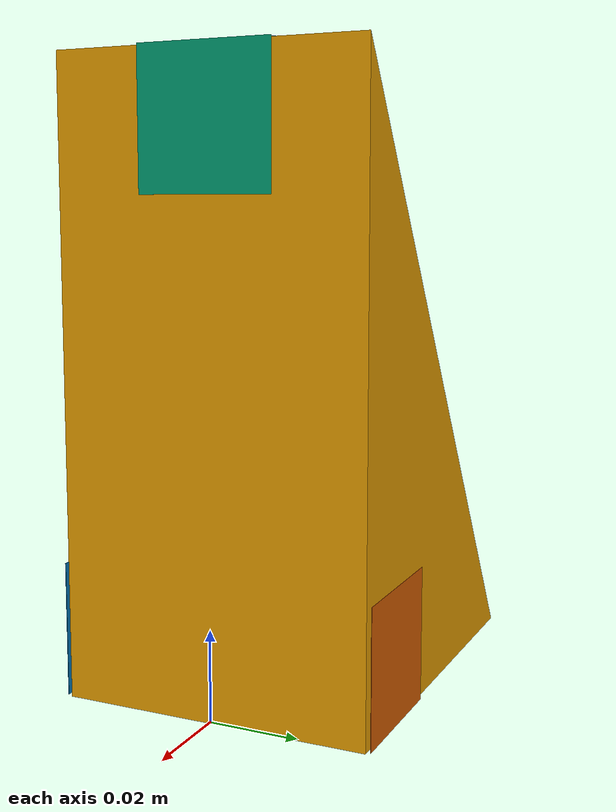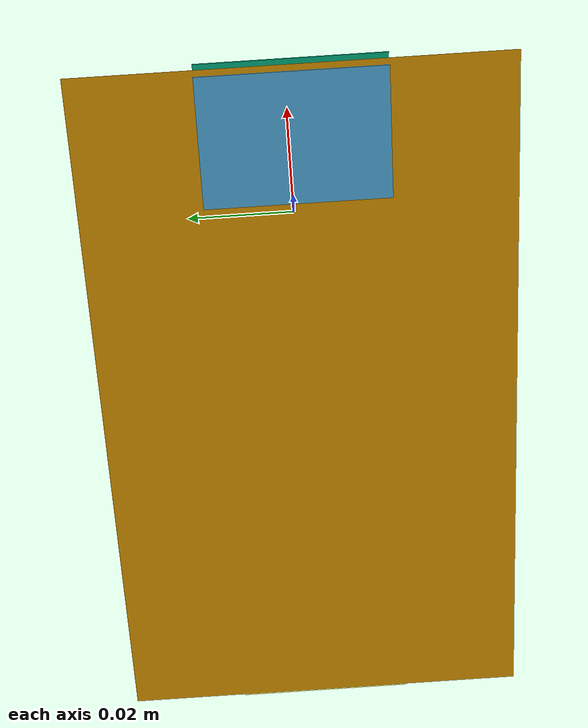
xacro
<?xml version="1.0"?>
<robot xmlns:xacro="http://www.ros.org/wiki/xacro" name="sandwich">

  <!-- label -->
  <xacro:arg name="use_label" default="false"/>
  <xacro:arg name="label_id" default="A"/>

  <!-- ar marker -->
  <xacro:arg name="use_ar_marker" default="true"/>
  <xacro:arg name="marker_id" default="0" />
  <xacro:arg name="marker_size" default="3"/>

  <property name="marker_size_p" value="${$(arg marker_size) * 0.01}"/>
  <property name="marker_id_p" value="$(arg marker_id)"/>

  <property name="M_PI" value="3.14159265359"/>

  <property name="mesh_path" value="package://fcsc_description/mesh/dae/sandwich_mix.dae"/>

  <xacro:macro name="box_inertial" params="mass x y z *origin">
    <inertial>
      <mass value="${mass}" />
      <xacro:insert_block name="origin" />
      <inertia  ixx="${mass*(y*y+z*z)/12}" ixy = "0" ixz = "0"
                iyy="${mass*(x*x+z*z)/12}" iyz = "0"
                izz="${mass*(x*x+y*y)/12}" />
    </inertial>
  </xacro:macro>

  <xacro:macro name="ar_marker" params="ar_marker_id ar_marker_size parent *origin">
		<link name="ar_marker_${ar_marker_id}">
			<xacro:box_inertial mass="0.0000001" x="${ar_marker_size}" y="${ar_marker_size}" z="0.0001">
				<origin xyz="0 0 0" rpy="0 0 1.57" />
			</xacro:box_inertial>
			<collision>
				<origin xyz="0 0 0" rpy="0 0 1.57"/>
				<geometry>
					<box size="${ar_marker_size} ${ar_marker_size} 0.0001"/>
				</geometry>
			</collision>
			<visual>
				<origin xyz="0 0 0" rpy="0 0 1.57"/>
				<geometry>
					<box size="${ar_marker_size} ${ar_marker_size} 0.0001"/>
				</geometry>
				<material name="ar_marker_${ar_marker_id}">
					<texture filename="package://fcsc_description/media/materials/textures/MarkerData_${ar_marker_id}.png"/>
				</material>
			</visual>
		</link>
		<gazebo reference="ar_marker_${ar_marker_id}">
			<material>ar_marker_${ar_marker_id}</material>
		</gazebo>
		<joint name="ar_joint_${ar_marker_id}" type="fixed">
			<parent link="${parent}"/>
			<child link="ar_marker_${ar_marker_id}"/>
			<xacro:insert_block name="origin" />
		</joint>
	</xacro:macro>

  <xacro:macro name="sandwich">
    <link name="sandwich">
      <inertial>
        <origin xyz="-0.03 0 0.046667"/>
        <mass value="0.1"/>
        <inertia  ixx="0.000149722222" ixy = "0.0" ixz = "-0.000035"
                  iyy="0.000153888889" iyz = "0.0"
                  izz="0.000085833333" />
      </inertial>
      <collision>
        <origin xyz="0 0 0" rpy="0 0 0"/>
        <geometry>
          <mesh filename="${mesh_path}" scale="1 1 1"/>
        </geometry>
      </collision>
      <visual>
        <origin xyz="0 0 0" rpy="0 0 0"/>
        <geometry>
          <mesh filename="${mesh_path}" scale="1 1 1"/>
        </geometry>
      </visual>
    </link>

    <xacro:if value="$(arg use_label)">
      <link name="label">
        <inertial>
          <origin xyz="0 0 0"/>
          <mass value="0.00000001"/>
          <inertia ixx="1" ixy="0" ixz="0" iyy="1" iyz="0" izz="1"/>
        </inertial>
        <collision>
          <origin xyz="0 0 ${0*0.073/2}"/>
          <geometry>
            <box size="0.0001 0.06 0.073"/>
          </geometry>
        </collision>
        <visual>
          <origin xyz="0 0 ${0*0.073/2}"/>
          <geometry>
            <box size="0.0001 0.06 0.073"/>
          </geometry>
          <material name="ID_$(arg label_id)">
            <texture filename="package://fcsc_description/image/ID_$(arg label_id).png"/>
          </material>
        </visual>
      </link>
      <gazebo reference="label">
        <material>ID_$(arg label_id)</material>
      </gazebo>
      <joint name="label_joint" type="fixed">
        <parent link="sandwich"/>
        <child link="label"/>
        <origin xyz="${0.07/2-0.001} 0 0.03" rpy="0 0 0"/>
      </joint>
    </xacro:if>

    <xacro:if value="$(arg use_ar_marker)">
      <!-- front -->
      <xacro:ar_marker ar_marker_id="${marker_id_p}" ar_marker_size="${marker_size_p}" parent="sandwich">
  	    <origin xyz="${-(marker_size_p / 2) * 9 / 16.6433 - 0.001} 0 ${0.14 - (marker_size_p / 2) * 14 / 16.6433}" rpy="${0.999459} 0 ${-M_PI/2}"/>
  	  </xacro:ar_marker>
      <!-- back -->
      <xacro:ar_marker ar_marker_id="${marker_id_p+1}" ar_marker_size="${marker_size_p}" parent="sandwich">
        <origin xyz="0.001 0 ${0.14-marker_size_p/2}" rpy="${M_PI/2} 0 ${M_PI/2}"/>
      </xacro:ar_marker>
      <!-- bottom -->
      <xacro:ar_marker ar_marker_id="${marker_id_p+2}" ar_marker_size="${marker_size_p}" parent="sandwich">
        <origin xyz="${-0.09+marker_size_p/2} 0 -0.001" rpy="0 ${M_PI} ${M_PI/2}"/>
      </xacro:ar_marker>
      <!-- right -->
      <xacro:ar_marker ar_marker_id="${marker_id_p+3}" ar_marker_size="${marker_size_p}" parent="sandwich">
        <origin xyz="${-marker_size_p/2} ${-0.07/2-0.001} ${marker_size_p/2}" rpy="${M_PI/2} 0 0"/>
      </xacro:ar_marker>
      <!-- left -->
      <xacro:ar_marker ar_marker_id="${marker_id_p+4}" ar_marker_size="${marker_size_p}" parent="sandwich">
        <origin xyz="${-marker_size_p/2} ${0.07/2+0.001} ${marker_size_p/2}" rpy="${M_PI/2} 0 0"/>
      </xacro:ar_marker>
    </xacro:if>

  </xacro:macro>

  <xacro:sandwich/>

</robot>
